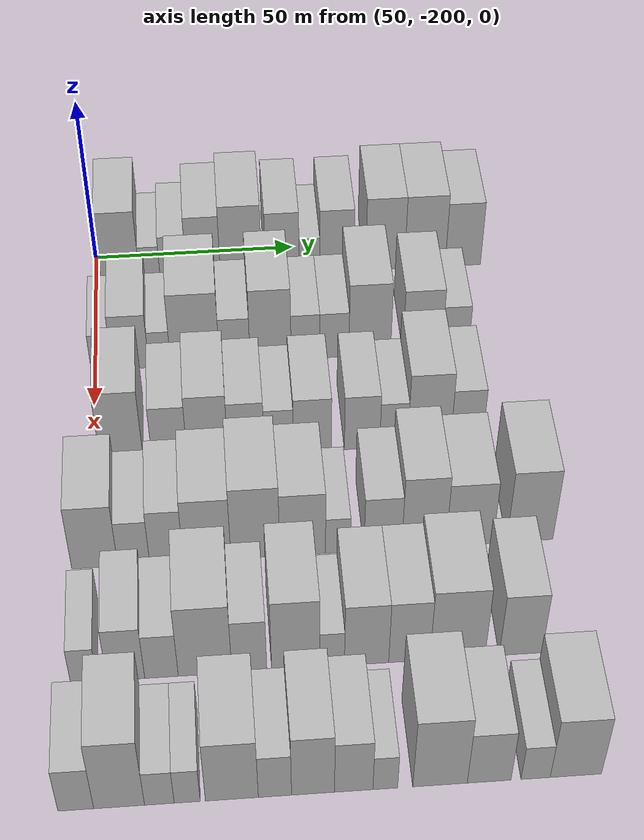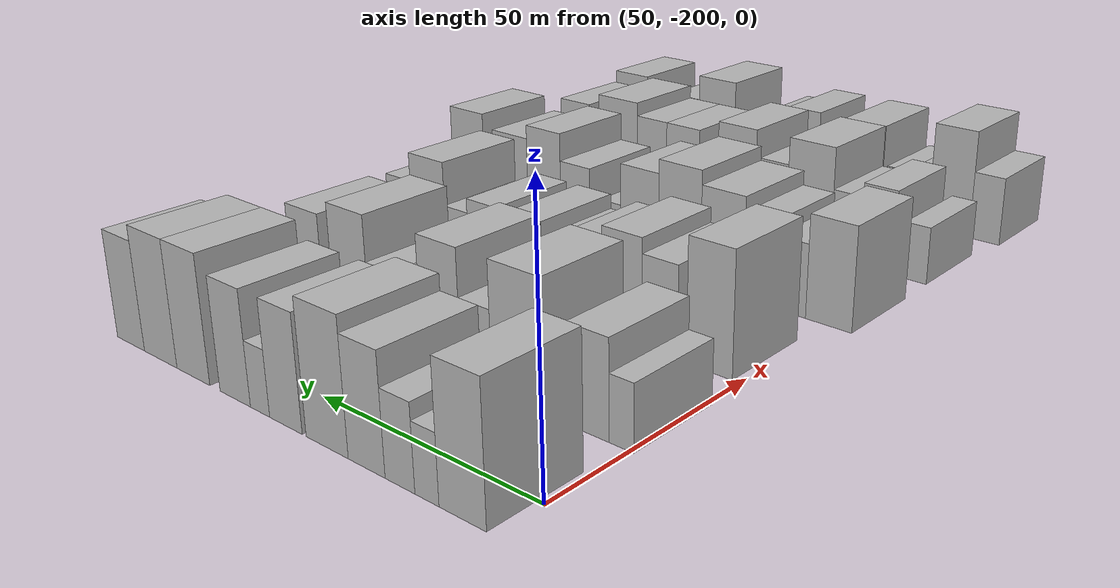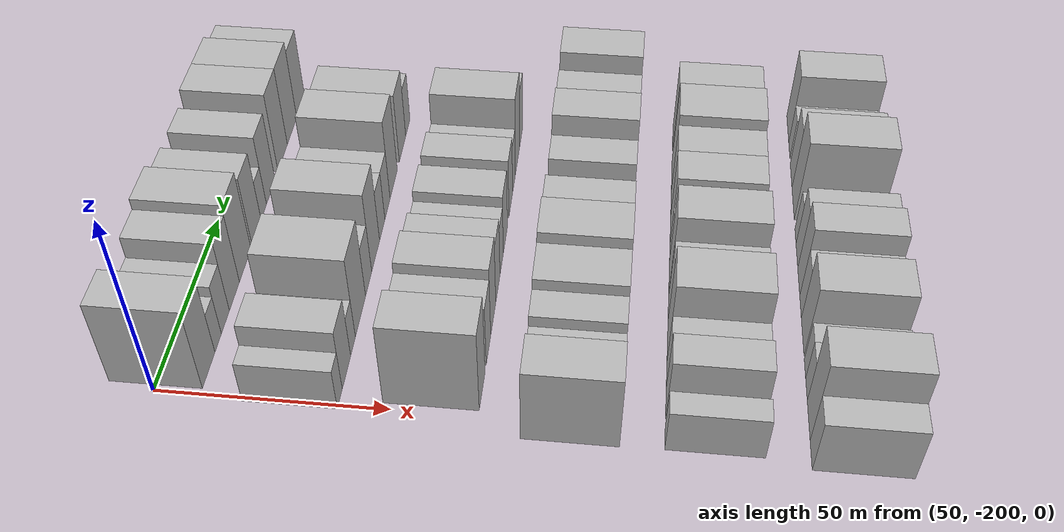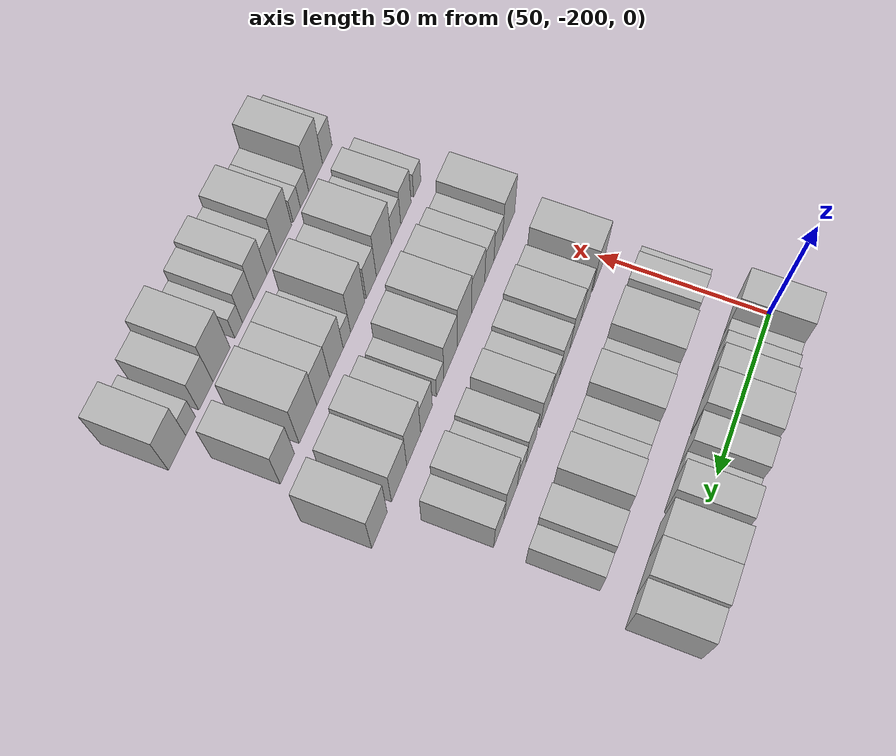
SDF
<sdf version="1.6">
 <world name="default">
  <model name="building_37">
   <static>1</static>
   <pose>50.0000 -193.7768 0 0.000000 0.000000 0.000000</pose>
   <link name="link">
    <pose>0 0 12.00 0 0 0</pose>
    <collision name="collision"><geometry><box><size>20.0000 9.6187 24.0000</size></box></geometry></collision>
    <visual name="visual">
     <cast_shadows>0</cast_shadows>
     <geometry><box><size>20.0000 9.6187 24.0000</size></box></geometry>
     <material>
      <script>
       <uri>model://HANNAS_wall/materials/scripts</uri>
       <uri>model://HANNAS_wall/materials/textures</uri>
       <name>vrc/HANNAS_wall</name>
      </script>
     </material>
    </visual>
   </link>
  </model>
  <model name="building_38">
   <static>1</static>
   <pose>50.0000 -186.4052 0 0.000000 0.000000 0.000000</pose>
   <link name="link">
    <pose>0 0 6.00 0 0 0</pose>
    <collision name="collision"><geometry><box><size>20.0000 5.1245 12.0000</size></box></geometry></collision>
    <visual name="visual">
     <cast_shadows>0</cast_shadows>
     <geometry><box><size>20.0000 5.1245 12.0000</size></box></geometry>
     <material>
      <script>
       <uri>model://HANNAS_wall/materials/scripts</uri>
       <uri>model://HANNAS_wall/materials/textures</uri>
       <name>vrc/HANNAS_wall</name>
      </script>
     </material>
    </visual>
   </link>
  </model>
  <model name="building_39">
   <static>1</static>
   <pose>50.0000 -180.5579 0 0.000000 0.000000 0.000000</pose>
   <link name="link">
    <pose>0 0 7.50 0 0 0</pose>
    <collision name="collision"><geometry><box><size>20.0000 6.5701 15.0000</size></box></geometry></collision>
    <visual name="visual">
     <cast_shadows>0</cast_shadows>
     <geometry><box><size>20.0000 6.5701 15.0000</size></box></geometry>
     <material>
      <script>
       <uri>model://HANNAS_wall/materials/scripts</uri>
       <uri>model://HANNAS_wall/materials/textures</uri>
       <name>vrc/HANNAS_wall</name>
      </script>
     </material>
    </visual>
   </link>
  </model>
  <model name="building_40">
   <static>1</static>
   <pose>50.0000 -173.0076 0 0.000000 0.000000 0.000000</pose>
   <link name="link">
    <pose>0 0 10.50 0 0 0</pose>
    <collision name="collision"><geometry><box><size>20.0000 8.5306 21.0000</size></box></geometry></collision>
    <visual name="visual">
     <cast_shadows>0</cast_shadows>
     <geometry><box><size>20.0000 8.5306 21.0000</size></box></geometry>
     <material>
      <script>
       <uri>model://HANNAS_wall/materials/scripts</uri>
       <uri>model://HANNAS_wall/materials/textures</uri>
       <name>vrc/HANNAS_wall</name>
      </script>
     </material>
    </visual>
   </link>
  </model>
  <model name="building_41">
   <static>1</static>
   <pose>50.0000 -163.5885 0 0.000000 0.000000 0.000000</pose>
   <link name="link">
    <pose>0 0 12.00 0 0 0</pose>
    <collision name="collision"><geometry><box><size>20.0000 10.3076 24.0000</size></box></geometry></collision>
    <visual name="visual">
     <cast_shadows>0</cast_shadows>
     <geometry><box><size>20.0000 10.3076 24.0000</size></box></geometry>
     <material>
      <script>
       <uri>model://HANNAS_wall/materials/scripts</uri>
       <uri>model://HANNAS_wall/materials/textures</uri>
       <name>vrc/HANNAS_wall</name>
      </script>
     </material>
    </visual>
   </link>
  </model>
  <model name="building_42">
   <static>1</static>
   <pose>50.0000 -153.1997 0 0.000000 0.000000 0.000000</pose>
   <link name="link">
    <pose>0 0 10.50 0 0 0</pose>
    <collision name="collision"><geometry><box><size>20.0000 8.4700 21.0000</size></box></geometry></collision>
    <visual name="visual">
     <cast_shadows>0</cast_shadows>
     <geometry><box><size>20.0000 8.4700 21.0000</size></box></geometry>
     <material>
      <script>
       <uri>model://HANNAS_wall/materials/scripts</uri>
       <uri>model://HANNAS_wall/materials/textures</uri>
       <name>vrc/HANNAS_wall</name>
      </script>
     </material>
    </visual>
   </link>
  </model>
  <model name="building_43">
   <static>1</static>
   <pose>50.0000 -146.3598 0 0.000000 0.000000 0.000000</pose>
   <link name="link">
    <pose>0 0 6.00 0 0 0</pose>
    <collision name="collision"><geometry><box><size>20.0000 5.2099 12.0000</size></box></geometry></collision>
    <visual name="visual">
     <cast_shadows>0</cast_shadows>
     <geometry><box><size>20.0000 5.2099 12.0000</size></box></geometry>
     <material>
      <script>
       <uri>model://HANNAS_wall/materials/scripts</uri>
       <uri>model://HANNAS_wall/materials/textures</uri>
       <name>vrc/HANNAS_wall</name>
      </script>
     </material>
    </visual>
   </link>
  </model>
  <model name="building_44">
   <static>1</static>
   <pose>50.0000 -139.4693 0 0.000000 0.000000 0.000000</pose>
   <link name="link">
    <pose>0 0 10.50 0 0 0</pose>
    <collision name="collision"><geometry><box><size>20.0000 8.5711 21.0000</size></box></geometry></collision>
    <visual name="visual">
     <cast_shadows>0</cast_shadows>
     <geometry><box><size>20.0000 8.5711 21.0000</size></box></geometry>
     <material>
      <script>
       <uri>model://HANNAS_wall/materials/scripts</uri>
       <uri>model://HANNAS_wall/materials/textures</uri>
       <name>vrc/HANNAS_wall</name>
      </script>
     </material>
    </visual>
   </link>
  </model>
  <model name="building_45">
   <static>1</static>
   <pose>50.0000 -127.2410 0 0.000000 0.000000 0.000000</pose>
   <link name="link">
    <pose>0 0 12.00 0 0 0</pose>
    <collision name="collision"><geometry><box><size>20.0000 9.8855 24.0000</size></box></geometry></collision>
    <visual name="visual">
     <cast_shadows>0</cast_shadows>
     <geometry><box><size>20.0000 9.8855 24.0000</size></box></geometry>
     <material>
      <script>
       <uri>model://HANNAS_wall/materials/scripts</uri>
       <uri>model://HANNAS_wall/materials/textures</uri>
       <name>vrc/HANNAS_wall</name>
      </script>
     </material>
    </visual>
   </link>
  </model>
  <model name="building_46">
   <static>1</static>
   <pose>50.0000 -117.1300 0 0.000000 0.000000 0.000000</pose>
   <link name="link">
    <pose>0 0 12.00 0 0 0</pose>
    <collision name="collision"><geometry><box><size>20.0000 10.3366 24.0000</size></box></geometry></collision>
    <visual name="visual">
     <cast_shadows>0</cast_shadows>
     <geometry><box><size>20.0000 10.3366 24.0000</size></box></geometry>
     <material>
      <script>
       <uri>model://HANNAS_wall/materials/scripts</uri>
       <uri>model://HANNAS_wall/materials/textures</uri>
       <name>vrc/HANNAS_wall</name>
      </script>
     </material>
    </visual>
   </link>
  </model>
  <model name="building_47">
   <static>1</static>
   <pose>50.0000 -107.4561 0 0.000000 0.000000 0.000000</pose>
   <link name="link">
    <pose>0 0 10.50 0 0 0</pose>
    <collision name="collision"><geometry><box><size>20.0000 9.0112 21.0000</size></box></geometry></collision>
    <visual name="visual">
     <cast_shadows>0</cast_shadows>
     <geometry><box><size>20.0000 9.0112 21.0000</size></box></geometry>
     <material>
      <script>
       <uri>model://HANNAS_wall/materials/scripts</uri>
       <uri>model://HANNAS_wall/materials/textures</uri>
       <name>vrc/HANNAS_wall</name>
      </script>
     </material>
    </visual>
   </link>
  </model>
  <model name="building_152">
   <static>1</static>
   <pose>79.0000 -198.3973 0 0.000000 0.000000 0.000000</pose>
   <link name="link">
    <pose>0 0 6.00 0 0 0</pose>
    <collision name="collision"><geometry><box><size>20.0000 5.0117 12.0000</size></box></geometry></collision>
    <visual name="visual">
     <cast_shadows>0</cast_shadows>
     <geometry><box><size>20.0000 5.0117 12.0000</size></box></geometry>
     <material>
      <script>
       <uri>model://HANNAS_wall/materials/scripts</uri>
       <uri>model://HANNAS_wall/materials/textures</uri>
       <name>vrc/HANNAS_wall</name>
      </script>
     </material>
    </visual>
   </link>
  </model>
  <model name="building_153">
   <static>1</static>
   <pose>79.0000 -191.4721 0 0.000000 0.000000 0.000000</pose>
   <link name="link">
    <pose>0 0 9.00 0 0 0</pose>
    <collision name="collision"><geometry><box><size>20.0000 8.8388 18.0000</size></box></geometry></collision>
    <visual name="visual">
     <cast_shadows>0</cast_shadows>
     <geometry><box><size>20.0000 8.8388 18.0000</size></box></geometry>
     <material>
      <script>
       <uri>model://HANNAS_wall/materials/scripts</uri>
       <uri>model://HANNAS_wall/materials/textures</uri>
       <name>vrc/HANNAS_wall</name>
      </script>
     </material>
    </visual>
   </link>
  </model>
  <model name="building_154">
   <static>1</static>
   <pose>79.0000 -184.4484 0 0.000000 0.000000 0.000000</pose>
   <link name="link">
    <pose>0 0 6.00 0 0 0</pose>
    <collision name="collision"><geometry><box><size>20.0000 5.2084 12.0000</size></box></geometry></collision>
    <visual name="visual">
     <cast_shadows>0</cast_shadows>
     <geometry><box><size>20.0000 5.2084 12.0000</size></box></geometry>
     <material>
      <script>
       <uri>model://HANNAS_wall/materials/scripts</uri>
       <uri>model://HANNAS_wall/materials/textures</uri>
       <name>vrc/HANNAS_wall</name>
      </script>
     </material>
    </visual>
   </link>
  </model>
  <model name="building_155">
   <static>1</static>
   <pose>79.0000 -175.9978 0 0.000000 0.000000 0.000000</pose>
   <link name="link">
    <pose>0 0 12.00 0 0 0</pose>
    <collision name="collision"><geometry><box><size>20.0000 11.6928 24.0000</size></box></geometry></collision>
    <visual name="visual">
     <cast_shadows>0</cast_shadows>
     <geometry><box><size>20.0000 11.6928 24.0000</size></box></geometry>
     <material>
      <script>
       <uri>model://HANNAS_wall/materials/scripts</uri>
       <uri>model://HANNAS_wall/materials/textures</uri>
       <name>vrc/HANNAS_wall</name>
      </script>
     </material>
    </visual>
   </link>
  </model>
  <model name="building_156">
   <static>1</static>
   <pose>79.0000 -166.4633 0 0.000000 0.000000 0.000000</pose>
   <link name="link">
    <pose>0 0 7.50 0 0 0</pose>
    <collision name="collision"><geometry><box><size>20.0000 7.3760 15.0000</size></box></geometry></collision>
    <visual name="visual">
     <cast_shadows>0</cast_shadows>
     <geometry><box><size>20.0000 7.3760 15.0000</size></box></geometry>
     <material>
      <script>
       <uri>model://HANNAS_wall/materials/scripts</uri>
       <uri>model://HANNAS_wall/materials/textures</uri>
       <name>vrc/HANNAS_wall</name>
      </script>
     </material>
    </visual>
   </link>
  </model>
  <model name="building_157">
   <static>1</static>
   <pose>79.0000 -157.8334 0 0.000000 0.000000 0.000000</pose>
   <link name="link">
    <pose>0 0 12.00 0 0 0</pose>
    <collision name="collision"><geometry><box><size>20.0000 9.8839 24.0000</size></box></geometry></collision>
    <visual name="visual">
     <cast_shadows>0</cast_shadows>
     <geometry><box><size>20.0000 9.8839 24.0000</size></box></geometry>
     <material>
      <script>
       <uri>model://HANNAS_wall/materials/scripts</uri>
       <uri>model://HANNAS_wall/materials/textures</uri>
       <name>vrc/HANNAS_wall</name>
      </script>
     </material>
    </visual>
   </link>
  </model>
  <model name="building_158">
   <static>1</static>
   <pose>79.0000 -149.4284 0 0.000000 0.000000 0.000000</pose>
   <link name="link">
    <pose>0 0 7.50 0 0 0</pose>
    <collision name="collision"><geometry><box><size>20.0000 6.9260 15.0000</size></box></geometry></collision>
    <visual name="visual">
     <cast_shadows>0</cast_shadows>
     <geometry><box><size>20.0000 6.9260 15.0000</size></box></geometry>
     <material>
      <script>
       <uri>model://HANNAS_wall/materials/scripts</uri>
       <uri>model://HANNAS_wall/materials/textures</uri>
       <name>vrc/HANNAS_wall</name>
      </script>
     </material>
    </visual>
   </link>
  </model>
  <model name="building_159">
   <static>1</static>
   <pose>79.0000 -142.4655 0 0.000000 0.000000 0.000000</pose>
   <link name="link">
    <pose>0 0 7.50 0 0 0</pose>
    <collision name="collision"><geometry><box><size>20.0000 6.9999 15.0000</size></box></geometry></collision>
    <visual name="visual">
     <cast_shadows>0</cast_shadows>
     <geometry><box><size>20.0000 6.9999 15.0000</size></box></geometry>
     <material>
      <script>
       <uri>model://HANNAS_wall/materials/scripts</uri>
       <uri>model://HANNAS_wall/materials/textures</uri>
       <name>vrc/HANNAS_wall</name>
      </script>
     </material>
    </visual>
   </link>
  </model>
  <model name="building_160">
   <static>1</static>
   <pose>79.0000 -133.9133 0 0.000000 0.000000 0.000000</pose>
   <link name="link">
    <pose>0 0 12.00 0 0 0</pose>
    <collision name="collision"><geometry><box><size>20.0000 10.1045 24.0000</size></box></geometry></collision>
    <visual name="visual">
     <cast_shadows>0</cast_shadows>
     <geometry><box><size>20.0000 10.1045 24.0000</size></box></geometry>
     <material>
      <script>
       <uri>model://HANNAS_wall/materials/scripts</uri>
       <uri>model://HANNAS_wall/materials/textures</uri>
       <name>vrc/HANNAS_wall</name>
      </script>
     </material>
    </visual>
   </link>
  </model>
  <model name="building_161">
   <static>1</static>
   <pose>79.0000 -121.1055 0 0.000000 0.000000 0.000000</pose>
   <link name="link">
    <pose>0 0 10.50 0 0 0</pose>
    <collision name="collision"><geometry><box><size>20.0000 9.5110 21.0000</size></box></geometry></collision>
    <visual name="visual">
     <cast_shadows>0</cast_shadows>
     <geometry><box><size>20.0000 9.5110 21.0000</size></box></geometry>
     <material>
      <script>
       <uri>model://HANNAS_wall/materials/scripts</uri>
       <uri>model://HANNAS_wall/materials/textures</uri>
       <name>vrc/HANNAS_wall</name>
      </script>
     </material>
    </visual>
   </link>
  </model>
  <model name="building_162">
   <static>1</static>
   <pose>79.0000 -113.0876 0 0.000000 0.000000 0.000000</pose>
   <link name="link">
    <pose>0 0 7.50 0 0 0</pose>
    <collision name="collision"><geometry><box><size>20.0000 6.5248 15.0000</size></box></geometry></collision>
    <visual name="visual">
     <cast_shadows>0</cast_shadows>
     <geometry><box><size>20.0000 6.5248 15.0000</size></box></geometry>
     <material>
      <script>
       <uri>model://HANNAS_wall/materials/scripts</uri>
       <uri>model://HANNAS_wall/materials/textures</uri>
       <name>vrc/HANNAS_wall</name>
      </script>
     </material>
    </visual>
   </link>
  </model>
  <model name="building_259">
   <static>1</static>
   <pose>108.0000 -193.5850 0 0.000000 0.000000 0.000000</pose>
   <link name="link">
    <pose>0 0 12.00 0 0 0</pose>
    <collision name="collision"><geometry><box><size>20.0000 9.8068 24.0000</size></box></geometry></collision>
    <visual name="visual">
     <cast_shadows>0</cast_shadows>
     <geometry><box><size>20.0000 9.8068 24.0000</size></box></geometry>
     <material>
      <script>
       <uri>model://HANNAS_wall/materials/scripts</uri>
       <uri>model://HANNAS_wall/materials/textures</uri>
       <name>vrc/HANNAS_wall</name>
      </script>
     </material>
    </visual>
   </link>
  </model>
  <model name="building_260">
   <static>1</static>
   <pose>108.0000 -182.6692 0 0.000000 0.000000 0.000000</pose>
   <link name="link">
    <pose>0 0 9.00 0 0 0</pose>
    <collision name="collision"><geometry><box><size>20.0000 8.0248 18.0000</size></box></geometry></collision>
    <visual name="visual">
     <cast_shadows>0</cast_shadows>
     <geometry><box><size>20.0000 8.0248 18.0000</size></box></geometry>
     <material>
      <script>
       <uri>model://HANNAS_wall/materials/scripts</uri>
       <uri>model://HANNAS_wall/materials/textures</uri>
       <name>vrc/HANNAS_wall</name>
      </script>
     </material>
    </visual>
   </link>
  </model>
  <model name="building_261">
   <static>1</static>
   <pose>108.0000 -173.9868 0 0.000000 0.000000 0.000000</pose>
   <link name="link">
    <pose>0 0 10.50 0 0 0</pose>
    <collision name="collision"><geometry><box><size>20.0000 9.3399 21.0000</size></box></geometry></collision>
    <visual name="visual">
     <cast_shadows>0</cast_shadows>
     <geometry><box><size>20.0000 9.3399 21.0000</size></box></geometry>
     <material>
      <script>
       <uri>model://HANNAS_wall/materials/scripts</uri>
       <uri>model://HANNAS_wall/materials/textures</uri>
       <name>vrc/HANNAS_wall</name>
      </script>
     </material>
    </visual>
   </link>
  </model>
  <model name="building_262">
   <static>1</static>
   <pose>108.0000 -165.1605 0 0.000000 0.000000 0.000000</pose>
   <link name="link">
    <pose>0 0 9.00 0 0 0</pose>
    <collision name="collision"><geometry><box><size>20.0000 8.3129 18.0000</size></box></geometry></collision>
    <visual name="visual">
     <cast_shadows>0</cast_shadows>
     <geometry><box><size>20.0000 8.3129 18.0000</size></box></geometry>
     <material>
      <script>
       <uri>model://HANNAS_wall/materials/scripts</uri>
       <uri>model://HANNAS_wall/materials/textures</uri>
       <name>vrc/HANNAS_wall</name>
      </script>
     </material>
    </visual>
   </link>
  </model>
  <model name="building_263">
   <static>1</static>
   <pose>108.0000 -157.6383 0 0.000000 0.000000 0.000000</pose>
   <link name="link">
    <pose>0 0 7.50 0 0 0</pose>
    <collision name="collision"><geometry><box><size>20.0000 6.7315 15.0000</size></box></geometry></collision>
    <visual name="visual">
     <cast_shadows>0</cast_shadows>
     <geometry><box><size>20.0000 6.7315 15.0000</size></box></geometry>
     <material>
      <script>
       <uri>model://HANNAS_wall/materials/scripts</uri>
       <uri>model://HANNAS_wall/materials/textures</uri>
       <name>vrc/HANNAS_wall</name>
      </script>
     </material>
    </visual>
   </link>
  </model>
  <model name="building_264">
   <static>1</static>
   <pose>108.0000 -149.9055 0 0.000000 0.000000 0.000000</pose>
   <link name="link">
    <pose>0 0 9.00 0 0 0</pose>
    <collision name="collision"><geometry><box><size>20.0000 8.7341 18.0000</size></box></geometry></collision>
    <visual name="visual">
     <cast_shadows>0</cast_shadows>
     <geometry><box><size>20.0000 8.7341 18.0000</size></box></geometry>
     <material>
      <script>
       <uri>model://HANNAS_wall/materials/scripts</uri>
       <uri>model://HANNAS_wall/materials/textures</uri>
       <name>vrc/HANNAS_wall</name>
      </script>
     </material>
    </visual>
   </link>
  </model>
  <model name="building_265">
   <static>1</static>
   <pose>108.0000 -138.4515 0 0.000000 0.000000 0.000000</pose>
   <link name="link">
    <pose>0 0 9.00 0 0 0</pose>
    <collision name="collision"><geometry><box><size>20.0000 8.1740 18.0000</size></box></geometry></collision>
    <visual name="visual">
     <cast_shadows>0</cast_shadows>
     <geometry><box><size>20.0000 8.1740 18.0000</size></box></geometry>
     <material>
      <script>
       <uri>model://HANNAS_wall/materials/scripts</uri>
       <uri>model://HANNAS_wall/materials/textures</uri>
       <name>vrc/HANNAS_wall</name>
      </script>
     </material>
    </visual>
   </link>
  </model>
  <model name="building_266">
   <static>1</static>
   <pose>108.0000 -131.1403 0 0.000000 0.000000 0.000000</pose>
   <link name="link">
    <pose>0 0 7.50 0 0 0</pose>
    <collision name="collision"><geometry><box><size>20.0000 6.4483 15.0000</size></box></geometry></collision>
    <visual name="visual">
     <cast_shadows>0</cast_shadows>
     <geometry><box><size>20.0000 6.4483 15.0000</size></box></geometry>
     <material>
      <script>
       <uri>model://HANNAS_wall/materials/scripts</uri>
       <uri>model://HANNAS_wall/materials/textures</uri>
       <name>vrc/HANNAS_wall</name>
      </script>
     </material>
    </visual>
   </link>
  </model>
  <model name="building_267">
   <static>1</static>
   <pose>108.0000 -122.9280 0 0.000000 0.000000 0.000000</pose>
   <link name="link">
    <pose>0 0 12.00 0 0 0</pose>
    <collision name="collision"><geometry><box><size>20.0000 9.9762 24.0000</size></box></geometry></collision>
    <visual name="visual">
     <cast_shadows>0</cast_shadows>
     <geometry><box><size>20.0000 9.9762 24.0000</size></box></geometry>
     <material>
      <script>
       <uri>model://HANNAS_wall/materials/scripts</uri>
       <uri>model://HANNAS_wall/materials/textures</uri>
       <name>vrc/HANNAS_wall</name>
      </script>
     </material>
    </visual>
   </link>
  </model>
  <model name="building_268">
   <static>1</static>
   <pose>108.0000 -114.2053 0 0.000000 0.000000 0.000000</pose>
   <link name="link">
    <pose>0 0 9.00 0 0 0</pose>
    <collision name="collision"><geometry><box><size>20.0000 7.4691 18.0000</size></box></geometry></collision>
    <visual name="visual">
     <cast_shadows>0</cast_shadows>
     <geometry><box><size>20.0000 7.4691 18.0000</size></box></geometry>
     <material>
      <script>
       <uri>model://HANNAS_wall/materials/scripts</uri>
       <uri>model://HANNAS_wall/materials/textures</uri>
       <name>vrc/HANNAS_wall</name>
      </script>
     </material>
    </visual>
   </link>
  </model>
  <model name="building_367">
   <static>1</static>
   <pose>137.0000 -199.5321 0 0.000000 0.000000 0.000000</pose>
   <link name="link">
    <pose>0 0 10.50 0 0 0</pose>
    <collision name="collision"><geometry><box><size>20.0000 9.9887 21.0000</size></box></geometry></collision>
    <visual name="visual">
     <cast_shadows>0</cast_shadows>
     <geometry><box><size>20.0000 9.9887 21.0000</size></box></geometry>
     <material>
      <script>
       <uri>model://HANNAS_wall/materials/scripts</uri>
       <uri>model://HANNAS_wall/materials/textures</uri>
       <name>vrc/HANNAS_wall</name>
      </script>
     </material>
    </visual>
   </link>
  </model>
  <model name="building_368">
   <static>1</static>
   <pose>137.0000 -191.0617 0 0.000000 0.000000 0.000000</pose>
   <link name="link">
    <pose>0 0 7.50 0 0 0</pose>
    <collision name="collision"><geometry><box><size>20.0000 6.9523 15.0000</size></box></geometry></collision>
    <visual name="visual">
     <cast_shadows>0</cast_shadows>
     <geometry><box><size>20.0000 6.9523 15.0000</size></box></geometry>
     <material>
      <script>
       <uri>model://HANNAS_wall/materials/scripts</uri>
       <uri>model://HANNAS_wall/materials/textures</uri>
       <name>vrc/HANNAS_wall</name>
      </script>
     </material>
    </visual>
   </link>
  </model>
  <model name="building_369">
   <static>1</static>
   <pose>137.0000 -183.9311 0 0.000000 0.000000 0.000000</pose>
   <link name="link">
    <pose>0 0 9.00 0 0 0</pose>
    <collision name="collision"><geometry><box><size>20.0000 7.3089 18.0000</size></box></geometry></collision>
    <visual name="visual">
     <cast_shadows>0</cast_shadows>
     <geometry><box><size>20.0000 7.3089 18.0000</size></box></geometry>
     <material>
      <script>
       <uri>model://HANNAS_wall/materials/scripts</uri>
       <uri>model://HANNAS_wall/materials/textures</uri>
       <name>vrc/HANNAS_wall</name>
      </script>
     </material>
    </visual>
   </link>
  </model>
  <model name="building_370">
   <static>1</static>
   <pose>137.0000 -175.0767 0 0.000000 0.000000 0.000000</pose>
   <link name="link">
    <pose>0 0 10.50 0 0 0</pose>
    <collision name="collision"><geometry><box><size>20.0000 10.3998 21.0000</size></box></geometry></collision>
    <visual name="visual">
     <cast_shadows>0</cast_shadows>
     <geometry><box><size>20.0000 10.3998 21.0000</size></box></geometry>
     <material>
      <script>
       <uri>model://HANNAS_wall/materials/scripts</uri>
       <uri>model://HANNAS_wall/materials/textures</uri>
       <name>vrc/HANNAS_wall</name>
      </script>
     </material>
    </visual>
   </link>
  </model>
  <model name="building_371">
   <static>1</static>
   <pose>137.0000 -164.5411 0 0.000000 0.000000 0.000000</pose>
   <link name="link">
    <pose>0 0 12.00 0 0 0</pose>
    <collision name="collision"><geometry><box><size>20.0000 10.6715 24.0000</size></box></geometry></collision>
    <visual name="visual">
     <cast_shadows>0</cast_shadows>
     <geometry><box><size>20.0000 10.6715 24.0000</size></box></geometry>
     <material>
      <script>
       <uri>model://HANNAS_wall/materials/scripts</uri>
       <uri>model://HANNAS_wall/materials/textures</uri>
       <name>vrc/HANNAS_wall</name>
      </script>
     </material>
    </visual>
   </link>
  </model>
  <model name="building_372">
   <static>1</static>
   <pose>137.0000 -154.1898 0 0.000000 0.000000 0.000000</pose>
   <link name="link">
    <pose>0 0 10.50 0 0 0</pose>
    <collision name="collision"><geometry><box><size>20.0000 10.0310 21.0000</size></box></geometry></collision>
    <visual name="visual">
     <cast_shadows>0</cast_shadows>
     <geometry><box><size>20.0000 10.0310 21.0000</size></box></geometry>
     <material>
      <script>
       <uri>model://HANNAS_wall/materials/scripts</uri>
       <uri>model://HANNAS_wall/materials/textures</uri>
       <name>vrc/HANNAS_wall</name>
      </script>
     </material>
    </visual>
   </link>
  </model>
  <model name="building_373">
   <static>1</static>
   <pose>137.0000 -146.4456 0 0.000000 0.000000 0.000000</pose>
   <link name="link">
    <pose>0 0 6.00 0 0 0</pose>
    <collision name="collision"><geometry><box><size>20.0000 5.4574 12.0000</size></box></geometry></collision>
    <visual name="visual">
     <cast_shadows>0</cast_shadows>
     <geometry><box><size>20.0000 5.4574 12.0000</size></box></geometry>
     <material>
      <script>
       <uri>model://HANNAS_wall/materials/scripts</uri>
       <uri>model://HANNAS_wall/materials/textures</uri>
       <name>vrc/HANNAS_wall</name>
      </script>
     </material>
    </visual>
   </link>
  </model>
  <model name="building_374">
   <static>1</static>
   <pose>137.0000 -136.5602 0 0.000000 0.000000 0.000000</pose>
   <link name="link">
    <pose>0 0 9.00 0 0 0</pose>
    <collision name="collision"><geometry><box><size>20.0000 8.3133 18.0000</size></box></geometry></collision>
    <visual name="visual">
     <cast_shadows>0</cast_shadows>
     <geometry><box><size>20.0000 8.3133 18.0000</size></box></geometry>
     <material>
      <script>
       <uri>model://HANNAS_wall/materials/scripts</uri>
       <uri>model://HANNAS_wall/materials/textures</uri>
       <name>vrc/HANNAS_wall</name>
      </script>
     </material>
    </visual>
   </link>
  </model>
  <model name="building_375">
   <static>1</static>
   <pose>137.0000 -127.5183 0 0.000000 0.000000 0.000000</pose>
   <link name="link">
    <pose>0 0 12.00 0 0 0</pose>
    <collision name="collision"><geometry><box><size>20.0000 9.7706 24.0000</size></box></geometry></collision>
    <visual name="visual">
     <cast_shadows>0</cast_shadows>
     <geometry><box><size>20.0000 9.7706 24.0000</size></box></geometry>
     <material>
      <script>
       <uri>model://HANNAS_wall/materials/scripts</uri>
       <uri>model://HANNAS_wall/materials/textures</uri>
       <name>vrc/HANNAS_wall</name>
      </script>
     </material>
    </visual>
   </link>
  </model>
  <model name="building_376">
   <static>1</static>
   <pose>137.0000 -117.3987 0 0.000000 0.000000 0.000000</pose>
   <link name="link">
    <pose>0 0 10.50 0 0 0</pose>
    <collision name="collision"><geometry><box><size>20.0000 10.4686 21.0000</size></box></geometry></collision>
    <visual name="visual">
     <cast_shadows>0</cast_shadows>
     <geometry><box><size>20.0000 10.4686 21.0000</size></box></geometry>
     <material>
      <script>
       <uri>model://HANNAS_wall/materials/scripts</uri>
       <uri>model://HANNAS_wall/materials/textures</uri>
       <name>vrc/HANNAS_wall</name>
      </script>
     </material>
    </visual>
   </link>
  </model>
  <model name="building_377">
   <static>1</static>
   <pose>137.0000 -104.0301 0 0.000000 0.000000 0.000000</pose>
   <link name="link">
    <pose>0 0 12.00 0 0 0</pose>
    <collision name="collision"><geometry><box><size>20.0000 10.2686 24.0000</size></box></geometry></collision>
    <visual name="visual">
     <cast_shadows>0</cast_shadows>
     <geometry><box><size>20.0000 10.2686 24.0000</size></box></geometry>
     <material>
      <script>
       <uri>model://HANNAS_wall/materials/scripts</uri>
       <uri>model://HANNAS_wall/materials/textures</uri>
       <name>vrc/HANNAS_wall</name>
      </script>
     </material>
    </visual>
   </link>
  </model>
  <model name="building_480">
   <static>1</static>
   <pose>166.0000 -201.5303 0 0.000000 0.000000 0.000000</pose>
   <link name="link">
    <pose>0 0 6.00 0 0 0</pose>
    <collision name="collision"><geometry><box><size>20.0000 5.5084 12.0000</size></box></geometry></collision>
    <visual name="visual">
     <cast_shadows>0</cast_shadows>
     <geometry><box><size>20.0000 5.5084 12.0000</size></box></geometry>
     <material>
      <script>
       <uri>model://HANNAS_wall/materials/scripts</uri>
       <uri>model://HANNAS_wall/materials/textures</uri>
       <name>vrc/HANNAS_wall</name>
      </script>
     </material>
    </visual>
   </link>
  </model>
  <model name="building_481">
   <static>1</static>
   <pose>166.0000 -192.8791 0 0.000000 0.000000 0.000000</pose>
   <link name="link">
    <pose>0 0 9.00 0 0 0</pose>
    <collision name="collision"><geometry><box><size>20.0000 7.7940 18.0000</size></box></geometry></collision>
    <visual name="visual">
     <cast_shadows>0</cast_shadows>
     <geometry><box><size>20.0000 7.7940 18.0000</size></box></geometry>
     <material>
      <script>
       <uri>model://HANNAS_wall/materials/scripts</uri>
       <uri>model://HANNAS_wall/materials/textures</uri>
       <name>vrc/HANNAS_wall</name>
      </script>
     </material>
    </visual>
   </link>
  </model>
  <model name="building_482">
   <static>1</static>
   <pose>166.0000 -185.5165 0 0.000000 0.000000 0.000000</pose>
   <link name="link">
    <pose>0 0 7.50 0 0 0</pose>
    <collision name="collision"><geometry><box><size>20.0000 6.9312 15.0000</size></box></geometry></collision>
    <visual name="visual">
     <cast_shadows>0</cast_shadows>
     <geometry><box><size>20.0000 6.9312 15.0000</size></box></geometry>
     <material>
      <script>
       <uri>model://HANNAS_wall/materials/scripts</uri>
       <uri>model://HANNAS_wall/materials/textures</uri>
       <name>vrc/HANNAS_wall</name>
      </script>
     </material>
    </visual>
   </link>
  </model>
  <model name="building_483">
   <static>1</static>
   <pose>166.0000 -176.4928 0 0.000000 0.000000 0.000000</pose>
   <link name="link">
    <pose>0 0 12.00 0 0 0</pose>
    <collision name="collision"><geometry><box><size>20.0000 11.1163 24.0000</size></box></geometry></collision>
    <visual name="visual">
     <cast_shadows>0</cast_shadows>
     <geometry><box><size>20.0000 11.1163 24.0000</size></box></geometry>
     <material>
      <script>
       <uri>model://HANNAS_wall/materials/scripts</uri>
       <uri>model://HANNAS_wall/materials/textures</uri>
       <name>vrc/HANNAS_wall</name>
      </script>
     </material>
    </visual>
   </link>
  </model>
  <model name="building_484">
   <static>1</static>
   <pose>166.0000 -167.3068 0 0.000000 0.000000 0.000000</pose>
   <link name="link">
    <pose>0 0 9.00 0 0 0</pose>
    <collision name="collision"><geometry><box><size>20.0000 7.2558 18.0000</size></box></geometry></collision>
    <visual name="visual">
     <cast_shadows>0</cast_shadows>
     <geometry><box><size>20.0000 7.2558 18.0000</size></box></geometry>
     <material>
      <script>
       <uri>model://HANNAS_wall/materials/scripts</uri>
       <uri>model://HANNAS_wall/materials/textures</uri>
       <name>vrc/HANNAS_wall</name>
      </script>
     </material>
    </visual>
   </link>
  </model>
  <model name="building_485">
   <static>1</static>
   <pose>166.0000 -157.6549 0 0.000000 0.000000 0.000000</pose>
   <link name="link">
    <pose>0 0 12.00 0 0 0</pose>
    <collision name="collision"><geometry><box><size>20.0000 10.0480 24.0000</size></box></geometry></collision>
    <visual name="visual">
     <cast_shadows>0</cast_shadows>
     <geometry><box><size>20.0000 10.0480 24.0000</size></box></geometry>
     <material>
      <script>
       <uri>model://HANNAS_wall/materials/scripts</uri>
       <uri>model://HANNAS_wall/materials/textures</uri>
       <name>vrc/HANNAS_wall</name>
      </script>
     </material>
    </visual>
   </link>
  </model>
  <model name="building_486">
   <static>1</static>
   <pose>166.0000 -150.0800 0 0.000000 0.000000 0.000000</pose>
   <link name="link">
    <pose>0 0 6.00 0 0 0</pose>
    <collision name="collision"><geometry><box><size>20.0000 5.1018 12.0000</size></box></geometry></collision>
    <visual name="visual">
     <cast_shadows>0</cast_shadows>
     <geometry><box><size>20.0000 5.1018 12.0000</size></box></geometry>
     <material>
      <script>
       <uri>model://HANNAS_wall/materials/scripts</uri>
       <uri>model://HANNAS_wall/materials/textures</uri>
       <name>vrc/HANNAS_wall</name>
      </script>
     </material>
    </visual>
   </link>
  </model>
  <model name="building_487">
   <static>1</static>
   <pose>166.0000 -142.8978 0 0.000000 0.000000 0.000000</pose>
   <link name="link">
    <pose>0 0 10.50 0 0 0</pose>
    <collision name="collision"><geometry><box><size>20.0000 9.2625 21.0000</size></box></geometry></collision>
    <visual name="visual">
     <cast_shadows>0</cast_shadows>
     <geometry><box><size>20.0000 9.2625 21.0000</size></box></geometry>
     <material>
      <script>
       <uri>model://HANNAS_wall/materials/scripts</uri>
       <uri>model://HANNAS_wall/materials/textures</uri>
       <name>vrc/HANNAS_wall</name>
      </script>
     </material>
    </visual>
   </link>
  </model>
  <model name="building_488">
   <static>1</static>
   <pose>166.0000 -133.9483 0 0.000000 0.000000 0.000000</pose>
   <link name="link">
    <pose>0 0 10.50 0 0 0</pose>
    <collision name="collision"><geometry><box><size>20.0000 8.6364 21.0000</size></box></geometry></collision>
    <visual name="visual">
     <cast_shadows>0</cast_shadows>
     <geometry><box><size>20.0000 8.6364 21.0000</size></box></geometry>
     <material>
      <script>
       <uri>model://HANNAS_wall/materials/scripts</uri>
       <uri>model://HANNAS_wall/materials/textures</uri>
       <name>vrc/HANNAS_wall</name>
      </script>
     </material>
    </visual>
   </link>
  </model>
  <model name="building_489">
   <static>1</static>
   <pose>166.0000 -123.8385 0 0.000000 0.000000 0.000000</pose>
   <link name="link">
    <pose>0 0 12.00 0 0 0</pose>
    <collision name="collision"><geometry><box><size>20.0000 11.5831 24.0000</size></box></geometry></collision>
    <visual name="visual">
     <cast_shadows>0</cast_shadows>
     <geometry><box><size>20.0000 11.5831 24.0000</size></box></geometry>
     <material>
      <script>
       <uri>model://HANNAS_wall/materials/scripts</uri>
       <uri>model://HANNAS_wall/materials/textures</uri>
       <name>vrc/HANNAS_wall</name>
      </script>
     </material>
    </visual>
   </link>
  </model>
  <model name="building_490">
   <static>1</static>
   <pose>166.0000 -110.5305 0 0.000000 0.000000 0.000000</pose>
   <link name="link">
    <pose>0 0 10.50 0 0 0</pose>
    <collision name="collision"><geometry><box><size>20.0000 9.0330 21.0000</size></box></geometry></collision>
    <visual name="visual">
     <cast_shadows>0</cast_shadows>
     <geometry><box><size>20.0000 9.0330 21.0000</size></box></geometry>
     <material>
      <script>
       <uri>model://HANNAS_wall/materials/scripts</uri>
       <uri>model://HANNAS_wall/materials/textures</uri>
       <name>vrc/HANNAS_wall</name>
      </script>
     </material>
    </visual>
   </link>
  </model>
  <model name="building_594">
   <static>1</static>
   <pose>195.0000 -202.7453 0 0.000000 0.000000 0.000000</pose>
   <link name="link">
    <pose>0 0 7.50 0 0 0</pose>
    <collision name="collision"><geometry><box><size>20.0000 6.9698 15.0000</size></box></geometry></collision>
    <visual name="visual">
     <cast_shadows>0</cast_shadows>
     <geometry><box><size>20.0000 6.9698 15.0000</size></box></geometry>
     <material>
      <script>
       <uri>model://HANNAS_wall/materials/scripts</uri>
       <uri>model://HANNAS_wall/materials/textures</uri>
       <name>vrc/HANNAS_wall</name>
      </script>
     </material>
    </visual>
   </link>
  </model>
  <model name="building_595">
   <static>1</static>
   <pose>195.0000 -194.2916 0 0.000000 0.000000 0.000000</pose>
   <link name="link">
    <pose>0 0 12.00 0 0 0</pose>
    <collision name="collision"><geometry><box><size>20.0000 9.9375 24.0000</size></box></geometry></collision>
    <visual name="visual">
     <cast_shadows>0</cast_shadows>
     <geometry><box><size>20.0000 9.9375 24.0000</size></box></geometry>
     <material>
      <script>
       <uri>model://HANNAS_wall/materials/scripts</uri>
       <uri>model://HANNAS_wall/materials/textures</uri>
       <name>vrc/HANNAS_wall</name>
      </script>
     </material>
    </visual>
   </link>
  </model>
  <model name="building_596">
   <static>1</static>
   <pose>195.0000 -186.4183 0 0.000000 0.000000 0.000000</pose>
   <link name="link">
    <pose>0 0 6.00 0 0 0</pose>
    <collision name="collision"><geometry><box><size>20.0000 5.8091 12.0000</size></box></geometry></collision>
    <visual name="visual">
     <cast_shadows>0</cast_shadows>
     <geometry><box><size>20.0000 5.8091 12.0000</size></box></geometry>
     <material>
      <script>
       <uri>model://HANNAS_wall/materials/scripts</uri>
       <uri>model://HANNAS_wall/materials/textures</uri>
       <name>vrc/HANNAS_wall</name>
      </script>
     </material>
    </visual>
   </link>
  </model>
  <model name="building_597">
   <static>1</static>
   <pose>195.0000 -180.9567 0 0.000000 0.000000 0.000000</pose>
   <link name="link">
    <pose>0 0 6.00 0 0 0</pose>
    <collision name="collision"><geometry><box><size>20.0000 5.1142 12.0000</size></box></geometry></collision>
    <visual name="visual">
     <cast_shadows>0</cast_shadows>
     <geometry><box><size>20.0000 5.1142 12.0000</size></box></geometry>
     <material>
      <script>
       <uri>model://HANNAS_wall/materials/scripts</uri>
       <uri>model://HANNAS_wall/materials/textures</uri>
       <name>vrc/HANNAS_wall</name>
      </script>
     </material>
    </visual>
   </link>
  </model>
  <model name="building_598">
   <static>1</static>
   <pose>195.0000 -172.2013 0 0.000000 0.000000 0.000000</pose>
   <link name="link">
    <pose>0 0 10.50 0 0 0</pose>
    <collision name="collision"><geometry><box><size>20.0000 10.3966 21.0000</size></box></geometry></collision>
    <visual name="visual">
     <cast_shadows>0</cast_shadows>
     <geometry><box><size>20.0000 10.3966 21.0000</size></box></geometry>
     <material>
      <script>
       <uri>model://HANNAS_wall/materials/scripts</uri>
       <uri>model://HANNAS_wall/materials/textures</uri>
       <name>vrc/HANNAS_wall</name>
      </script>
     </material>
    </visual>
   </link>
  </model>
  <model name="building_599">
   <static>1</static>
   <pose>195.0000 -163.7290 0 0.000000 0.000000 0.000000</pose>
   <link name="link">
    <pose>0 0 7.50 0 0 0</pose>
    <collision name="collision"><geometry><box><size>20.0000 6.5479 15.0000</size></box></geometry></collision>
    <visual name="visual">
     <cast_shadows>0</cast_shadows>
     <geometry><box><size>20.0000 6.5479 15.0000</size></box></geometry>
     <material>
      <script>
       <uri>model://HANNAS_wall/materials/scripts</uri>
       <uri>model://HANNAS_wall/materials/textures</uri>
       <name>vrc/HANNAS_wall</name>
      </script>
     </material>
    </visual>
   </link>
  </model>
  <model name="building_600">
   <static>1</static>
   <pose>195.0000 -156.2140 0 0.000000 0.000000 0.000000</pose>
   <link name="link">
    <pose>0 0 10.50 0 0 0</pose>
    <collision name="collision"><geometry><box><size>20.0000 8.4823 21.0000</size></box></geometry></collision>
    <visual name="visual">
     <cast_shadows>0</cast_shadows>
     <geometry><box><size>20.0000 8.4823 21.0000</size></box></geometry>
     <material>
      <script>
       <uri>model://HANNAS_wall/materials/scripts</uri>
       <uri>model://HANNAS_wall/materials/textures</uri>
       <name>vrc/HANNAS_wall</name>
      </script>
     </material>
    </visual>
   </link>
  </model>
  <model name="building_601">
   <static>1</static>
   <pose>195.0000 -148.1794 0 0.000000 0.000000 0.000000</pose>
   <link name="link">
    <pose>0 0 9.00 0 0 0</pose>
    <collision name="collision"><geometry><box><size>20.0000 7.5869 18.0000</size></box></geometry></collision>
    <visual name="visual">
     <cast_shadows>0</cast_shadows>
     <geometry><box><size>20.0000 7.5869 18.0000</size></box></geometry>
     <material>
      <script>
       <uri>model://HANNAS_wall/materials/scripts</uri>
       <uri>model://HANNAS_wall/materials/textures</uri>
       <name>vrc/HANNAS_wall</name>
      </script>
     </material>
    </visual>
   </link>
  </model>
  <model name="building_602">
   <static>1</static>
   <pose>195.0000 -141.9288 0 0.000000 0.000000 0.000000</pose>
   <link name="link">
    <pose>0 0 6.00 0 0 0</pose>
    <collision name="collision"><geometry><box><size>20.0000 4.9141 12.0000</size></box></geometry></collision>
    <visual name="visual">
     <cast_shadows>0</cast_shadows>
     <geometry><box><size>20.0000 4.9141 12.0000</size></box></geometry>
     <material>
      <script>
       <uri>model://HANNAS_wall/materials/scripts</uri>
       <uri>model://HANNAS_wall/materials/textures</uri>
       <name>vrc/HANNAS_wall</name>
      </script>
     </material>
    </visual>
   </link>
  </model>
  <model name="building_603">
   <static>1</static>
   <pose>195.0000 -131.0438 0 0.000000 0.000000 0.000000</pose>
   <link name="link">
    <pose>0 0 12.00 0 0 0</pose>
    <collision name="collision"><geometry><box><size>20.0000 10.8559 24.0000</size></box></geometry></collision>
    <visual name="visual">
     <cast_shadows>0</cast_shadows>
     <geometry><box><size>20.0000 10.8559 24.0000</size></box></geometry>
     <material>
      <script>
       <uri>model://HANNAS_wall/materials/scripts</uri>
       <uri>model://HANNAS_wall/materials/textures</uri>
       <name>vrc/HANNAS_wall</name>
      </script>
     </material>
    </visual>
   </link>
  </model>
  <model name="building_604">
   <static>1</static>
   <pose>195.0000 -121.2569 0 0.000000 0.000000 0.000000</pose>
   <link name="link">
    <pose>0 0 9.00 0 0 0</pose>
    <collision name="collision"><geometry><box><size>20.0000 8.7180 18.0000</size></box></geometry></collision>
    <visual name="visual">
     <cast_shadows>0</cast_shadows>
     <geometry><box><size>20.0000 8.7180 18.0000</size></box></geometry>
     <material>
      <script>
       <uri>model://HANNAS_wall/materials/scripts</uri>
       <uri>model://HANNAS_wall/materials/textures</uri>
       <name>vrc/HANNAS_wall</name>
      </script>
     </material>
    </visual>
   </link>
  </model>
  <model name="building_605">
   <static>1</static>
   <pose>195.0000 -111.9762 0 0.000000 0.000000 0.000000</pose>
   <link name="link">
    <pose>0 0 6.00 0 0 0</pose>
    <collision name="collision"><geometry><box><size>20.0000 5.8432 12.0000</size></box></geometry></collision>
    <visual name="visual">
     <cast_shadows>0</cast_shadows>
     <geometry><box><size>20.0000 5.8432 12.0000</size></box></geometry>
     <material>
      <script>
       <uri>model://HANNAS_wall/materials/scripts</uri>
       <uri>model://HANNAS_wall/materials/textures</uri>
       <name>vrc/HANNAS_wall</name>
      </script>
     </material>
    </visual>
   </link>
  </model>
  <model name="building_606">
   <static>1</static>
   <pose>195.0000 -103.9154 0 0.000000 0.000000 0.000000</pose>
   <link name="link">
    <pose>0 0 10.50 0 0 0</pose>
    <collision name="collision"><geometry><box><size>20.0000 10.2785 21.0000</size></box></geometry></collision>
    <visual name="visual">
     <cast_shadows>0</cast_shadows>
     <geometry><box><size>20.0000 10.2785 21.0000</size></box></geometry>
     <material>
      <script>
       <uri>model://HANNAS_wall/materials/scripts</uri>
       <uri>model://HANNAS_wall/materials/textures</uri>
       <name>vrc/HANNAS_wall</name>
      </script>
     </material>
    </visual>
   </link>
  </model>
 </world>
</sdf>
